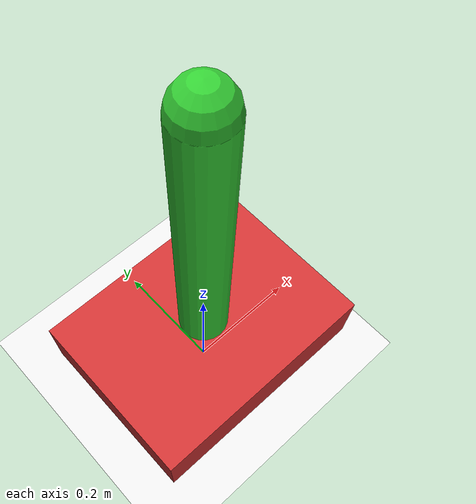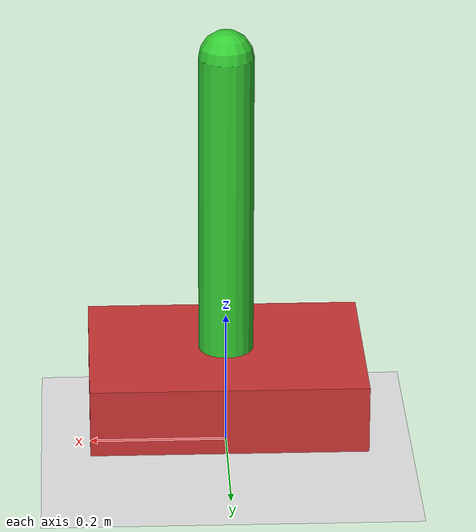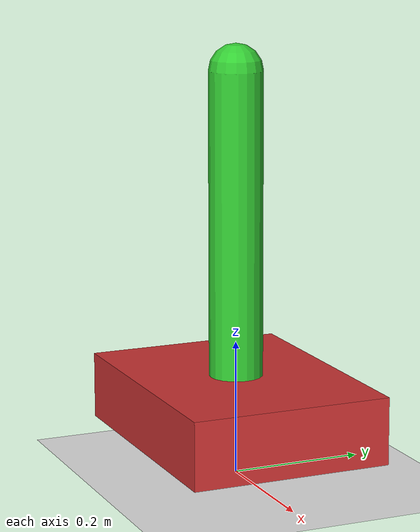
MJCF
<mujoco model="Actuation Test">
    <compiler angle="radian"/>

    <option timestep="0.002" integrator="RK4">
        <flag actuation="enable"/>
    </option>

    <visual>
        <headlight ambient=".4 .4 .4" diffuse=".8 .8 .8" specular="0.1 0.1 0.1"/>
    </visual>

    <worldbody>
        <light pos="0 0 1.5" dir="0 0 -1"/>
        <geom type="plane" size="2 2 0.1" rgba=".9 .9 .9 1"/>
        <body name="cart" pos="0 0 0.1">
            <joint name="slider" type="slide" pos="0 0 0" axis="1 0 0"/>
            <geom type="box" size=".2 .15 .05" rgba="0.8 0.2 0.2 1"/>
            <body name="pole" pos="0 0 0">
                <joint name="hinger" type="hinge" pos="0 0 0" axis="0 1 0"/>
                <geom type="capsule" fromto="0 0 0 0 0 0.5" size="0.04" rgba="0.2 0.8 0.2 1"/>
            </body>
        </body>
    </worldbody>

    <actuator>
        <general name="cart_motor" joint="slider"
               gaintype="fixed" gainprm="100"
               ctrllimited="true" ctrlrange="-1.0 1.0"
               forcelimited="true" forcerange="-200 200"/>

        <general name="pole_actuator" joint="hinger"
               dyntype="filter" dynprm="0.1"
               gaintype="fixed" gainprm="50"
               biastype="affine" biasprm="0 -20 -2"
               ctrllimited="true" ctrlrange="-1.0 1.0"/>
    </actuator>

</mujoco>
